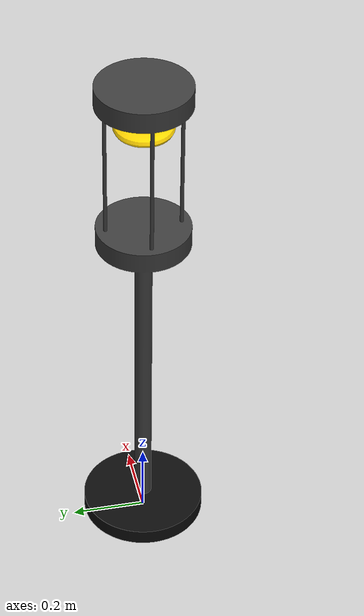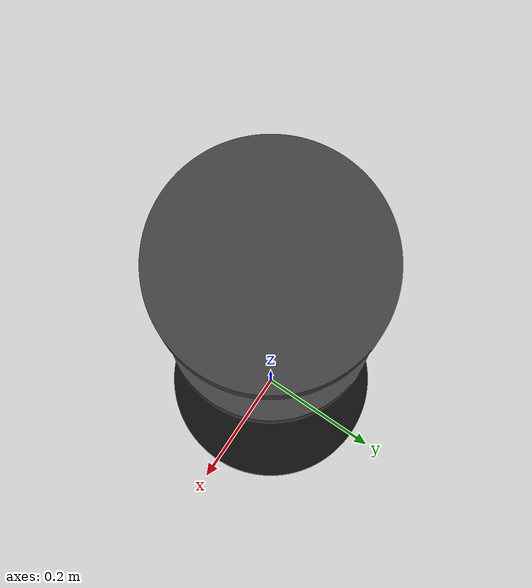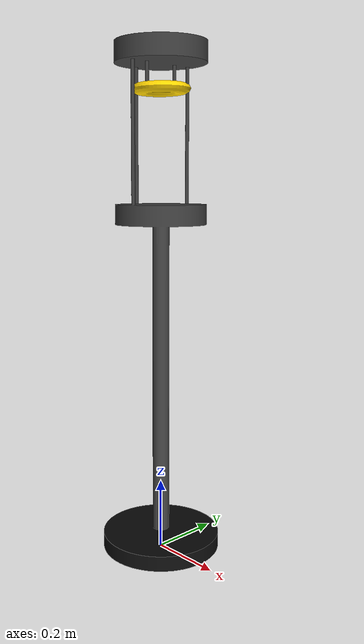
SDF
<?xml version="1.0" ?>
<sdf version="1.5">
  <model name="vision_box">
    <link name="link">
      <collision name="collision">
        <pose>0 0 0.0 0 0 0</pose>
        <geometry>
          <mesh>
            <uri>model://vision_box/meshes/vision_box.dae</uri>
            <scale>1 1 1</scale>
          </mesh>
        </geometry>
      </collision>
      <visual name="visual">
        <geometry>
          <mesh>
            <uri>model://vision_box/meshes/vision_box.dae</uri>
          </mesh>
        </geometry>
      </visual>
    </link>
  </model>
</sdf>
